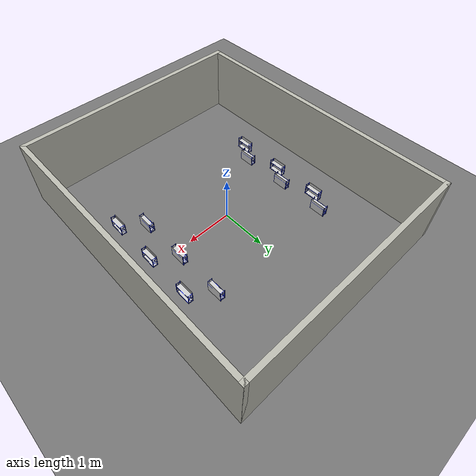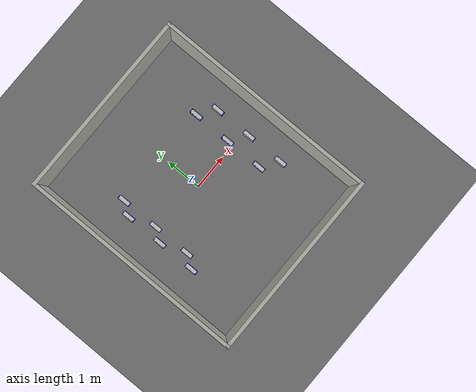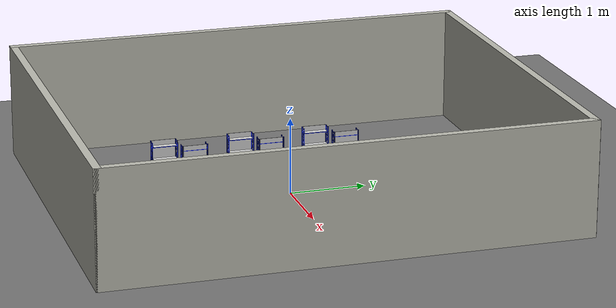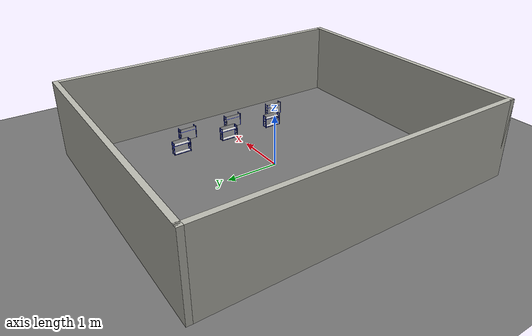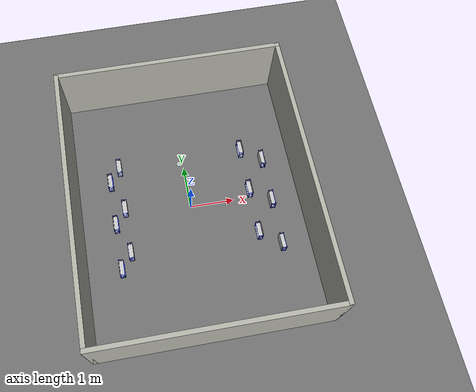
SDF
<?xml version="1.0" ?>
<sdf version="1.6">
  <world name="new_warehouse">

    <!-- Required Ignition Fortress system plugins -->
    <plugin filename="ignition-gazebo-physics-system"
            name="ignition::gazebo::systems::Physics"/>
    <plugin filename="ignition-gazebo-user-commands-system"
            name="ignition::gazebo::systems::UserCommands"/>
    <plugin filename="ignition-gazebo-scene-broadcaster-system"
            name="ignition::gazebo::systems::SceneBroadcaster"/>
    <plugin filename="ignition-gazebo-sensors-system"
            name="ignition::gazebo::systems::Sensors">
      <render_engine>ogre2</render_engine>
    </plugin>

    <physics name="1ms" type="ode">
      <max_step_size>0.01</max_step_size>
      <real_time_factor>1.0</real_time_factor>
    </physics>

    <!-- Overhead directional light -->
    <light type="directional" name="sun">
      <cast_shadows>true</cast_shadows>
      <pose>0 0 10 0 0 0</pose>
      <diffuse>0.9 0.9 0.9 1</diffuse>
      <specular>0.3 0.3 0.3 1</specular>
      <attenuation>
        <range>1000</range>
        <constant>0.9</constant>
        <linear>0.01</linear>
        <quadratic>0.001</quadratic>
      </attenuation>
      <direction>-0.3 0.1 -0.95</direction>
    </light>

    <!-- Ground plane -->
    <model name="ground_plane">
      <static>true</static>
      <link name="link">
        <collision name="collision">
          <geometry>
            <plane><normal>0 0 1</normal><size>100 100</size></plane>
          </geometry>
        </collision>
        <visual name="visual">
          <geometry>
            <plane><normal>0 0 1</normal><size>100 100</size></plane>
          </geometry>
          <material>
            <ambient>0.45 0.45 0.45 1</ambient>
            <diffuse>0.45 0.45 0.45 1</diffuse>
            <specular>0.05 0.05 0.05 1</specular>
          </material>
        </visual>
      </link>
    </model>

    <!-- ===== Walls  5 m (X) × 6 m (Y) interior, 0.1 m thick, 1.5 m tall ===== -->
    <model name="wall_north">
      <static>true</static>
      <pose>0 3.05 0.75 0 0 0</pose>
      <link name="link">
        <collision name="collision">
          <geometry><box><size>5.2 0.1 1.5</size></box></geometry>
        </collision>
        <visual name="visual">
          <geometry><box><size>5.2 0.1 1.5</size></box></geometry>
          <material><ambient>0.72 0.72 0.68 1</ambient><diffuse>0.72 0.72 0.68 1</diffuse></material>
        </visual>
      </link>
    </model>

    <model name="wall_south">
      <static>true</static>
      <pose>0 -3.05 0.75 0 0 0</pose>
      <link name="link">
        <collision name="collision">
          <geometry><box><size>5.2 0.1 1.5</size></box></geometry>
        </collision>
        <visual name="visual">
          <geometry><box><size>5.2 0.1 1.5</size></box></geometry>
          <material><ambient>0.72 0.72 0.68 1</ambient><diffuse>0.72 0.72 0.68 1</diffuse></material>
        </visual>
      </link>
    </model>

    <model name="wall_east">
      <static>true</static>
      <pose>2.55 0 0.75 0 0 0</pose>
      <link name="link">
        <collision name="collision">
          <geometry><box><size>0.1 6.2 1.5</size></box></geometry>
        </collision>
        <visual name="visual">
          <geometry><box><size>0.1 6.2 1.5</size></box></geometry>
          <material><ambient>0.72 0.72 0.68 1</ambient><diffuse>0.72 0.72 0.68 1</diffuse></material>
        </visual>
      </link>
    </model>

    <model name="wall_west">
      <static>true</static>
      <pose>-2.55 0 0.75 0 0 0</pose>
      <link name="link">
        <collision name="collision">
          <geometry><box><size>0.1 6.2 1.5</size></box></geometry>
        </collision>
        <visual name="visual">
          <geometry><box><size>0.1 6.2 1.5</size></box></geometry>
          <material><ambient>0.72 0.72 0.68 1</ambient><diffuse>0.72 0.72 0.68 1</diffuse></material>
        </visual>
      </link>
    </model>

    <!--  RACKS  (rack.dae — 0.35 m × 0.11 m × 0.265 m, origin at min corner) -->
    <!--  Collision box centred at local (0.175, 0.055, 0.1325)                -->
    <!--  Group 1 left : Row A x=-1.800, Row B x=-1.450                        -->
    <!--  Group 2 right: Row C x=+1.450, Row D x=+1.800                        -->
    <!--  3 racks per row at y = -1.05 / 0.00 / +1.05                          -->

    <!-- Row A  (x = -1.800) -->
    <model name="rack_A1">
      <static>true</static>
      <pose>-1.800 -1.05 0 0 0 -1.5708</pose>
      <link name="link">
        <visual name="visual">
          <geometry><mesh><uri>model://description/meshes/other/rack.dae</uri></mesh></geometry>
        </visual>
        <collision name="collision">
          <pose>0.175 0.055 0.1325 0 0 0</pose>
          <geometry><box><size>0.35 0.11 0.265</size></box></geometry>
        </collision>
      </link>
    </model>

    <model name="rack_A2">
      <static>true</static>
      <pose>-1.800 0.00 0 0 0 -1.5708</pose>
      <link name="link">
        <visual name="visual">
          <geometry><mesh><uri>model://description/meshes/other/rack.dae</uri></mesh></geometry>
        </visual>
        <collision name="collision">
          <pose>0.175 0.055 0.1325 0 0 0</pose>
          <geometry><box><size>0.35 0.11 0.265</size></box></geometry>
        </collision>
      </link>
    </model>

    <model name="rack_A3">
      <static>true</static>
      <pose>-1.800 1.05 0 0 0 -1.5708</pose>
      <link name="link">
        <visual name="visual">
          <geometry><mesh><uri>model://description/meshes/other/rack.dae</uri></mesh></geometry>
        </visual>
        <collision name="collision">
          <pose>0.175 0.055 0.1325 0 0 0</pose>
          <geometry><box><size>0.35 0.11 0.265</size></box></geometry>
        </collision>
      </link>
    </model>

    <!-- Row B  (x = -1.450, back-to-back with Row A) -->
    <model name="rack_B1">
      <static>true</static>
      <pose>-1.450 -1.05 0 0 0 1.5708</pose>
      <link name="link">
        <visual name="visual">
          <geometry><mesh><uri>model://description/meshes/other/rack.dae</uri></mesh></geometry>
        </visual>
        <collision name="collision">
          <pose>0.175 0.055 0.1325 0 0 0</pose>
          <geometry><box><size>0.35 0.11 0.265</size></box></geometry>
        </collision>
      </link>
    </model>

    <model name="rack_B2">
      <static>true</static>
      <pose>-1.450 0.00 0 0 0 1.5708</pose>
      <link name="link">
        <visual name="visual">
          <geometry><mesh><uri>model://description/meshes/other/rack.dae</uri></mesh></geometry>
        </visual>
        <collision name="collision">
          <pose>0.175 0.055 0.1325 0 0 0</pose>
          <geometry><box><size>0.35 0.11 0.265</size></box></geometry>
        </collision>
      </link>
    </model>

    <model name="rack_B3">
      <static>true</static>
      <pose>-1.450 1.05 0 0 0 1.5708</pose>
      <link name="link">
        <visual name="visual">
          <geometry><mesh><uri>model://description/meshes/other/rack.dae</uri></mesh></geometry>
        </visual>
        <collision name="collision">
          <pose>0.175 0.055 0.1325 0 0 0</pose>
          <geometry><box><size>0.35 0.11 0.265</size></box></geometry>
        </collision>
      </link>
    </model>

    <!-- Row C  (x = +1.450, back-to-back with Row D) -->
    <model name="rack_C1">
      <static>true</static>
      <pose>1.450 -1.05 0 0 0 1.5708</pose>
      <link name="link">
        <visual name="visual">
          <geometry><mesh><uri>model://description/meshes/other/rack.dae</uri></mesh></geometry>
        </visual>
        <collision name="collision">
          <pose>0.175 0.055 0.1325 0 0 0</pose>
          <geometry><box><size>0.35 0.11 0.265</size></box></geometry>
        </collision>
      </link>
    </model>

    <model name="rack_C2">
      <static>true</static>
      <pose>1.450 0.00 0 0 0 1.5708</pose>
      <link name="link">
        <visual name="visual">
          <geometry><mesh><uri>model://description/meshes/other/rack.dae</uri></mesh></geometry>
        </visual>
        <collision name="collision">
          <pose>0.175 0.055 0.1325 0 0 0</pose>
          <geometry><box><size>0.35 0.11 0.265</size></box></geometry>
        </collision>
      </link>
    </model>

    <model name="rack_C3">
      <static>true</static>
      <pose>1.450 1.05 0 0 0 1.5708</pose>
      <link name="link">
        <visual name="visual">
          <geometry><mesh><uri>model://description/meshes/other/rack.dae</uri></mesh></geometry>
        </visual>
        <collision name="collision">
          <pose>0.175 0.055 0.1325 0 0 0</pose>
          <geometry><box><size>0.35 0.11 0.265</size></box></geometry>
        </collision>
      </link>
    </model>

    <!-- Row D  (x = +1.800) -->
    <model name="rack_D1">
      <static>true</static>
      <pose>1.800 -1.05 0 0 0 -1.5708</pose>
      <link name="link">
        <visual name="visual">
          <geometry><mesh><uri>model://description/meshes/other/rack.dae</uri></mesh></geometry>
        </visual>
        <collision name="collision">
          <pose>0.175 0.055 0.1325 0 0 0</pose>
          <geometry><box><size>0.35 0.11 0.265</size></box></geometry>
        </collision>
      </link>
    </model>

    <model name="rack_D2">
      <static>true</static>
      <pose>1.800 0.00 0 0 0 -1.5708</pose>
      <link name="link">
        <visual name="visual">
          <geometry><mesh><uri>model://description/meshes/other/rack.dae</uri></mesh></geometry>
        </visual>
        <collision name="collision">
          <pose>0.175 0.055 0.1325 0 0 0</pose>
          <geometry><box><size>0.35 0.11 0.265</size></box></geometry>
        </collision>
      </link>
    </model>

    <model name="rack_D3">
      <static>true</static>
      <pose>1.800 1.05 0 0 0 -1.5708</pose>
      <link name="link">
        <visual name="visual">
          <geometry><mesh><uri>model://description/meshes/other/rack.dae</uri></mesh></geometry>
        </visual>
        <collision name="collision">
          <pose>0.175 0.055 0.1325 0 0 0</pose>
          <geometry><box><size>0.35 0.11 0.265</size></box></geometry>
        </collision>
      </link>
    </model>

  </world>
</sdf>
